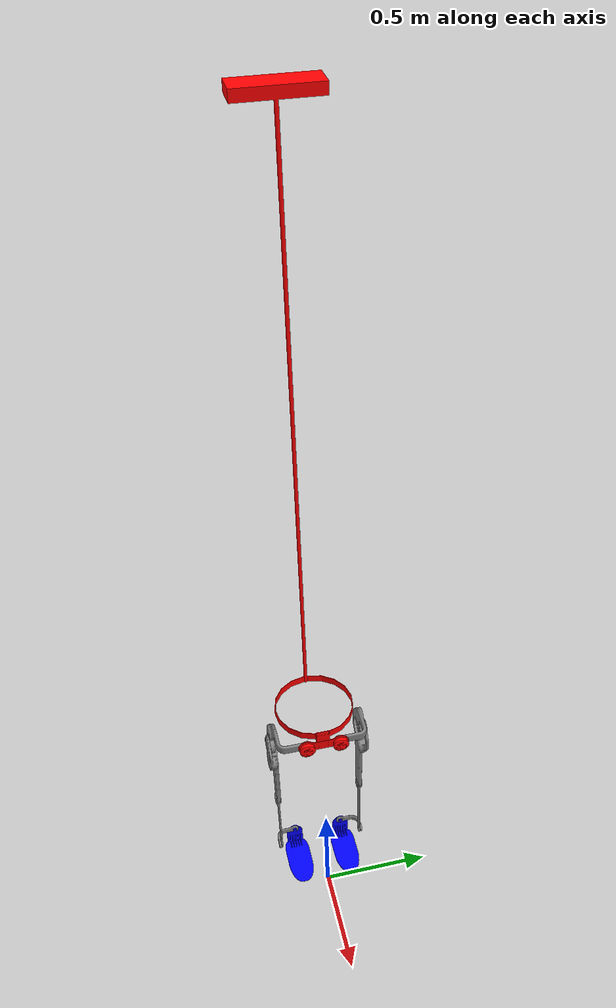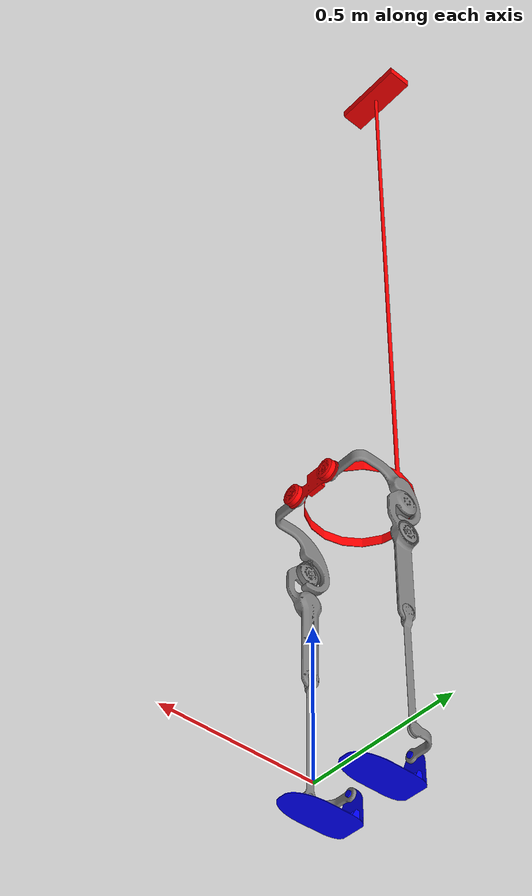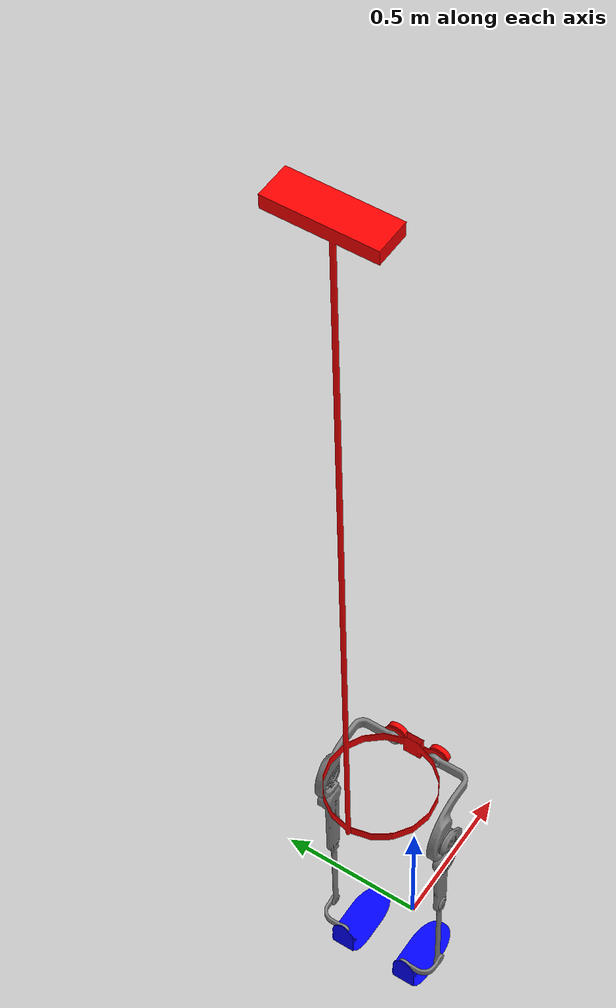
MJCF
<mujoco model="a2">

  <!-- ========== Compiler & Options ========== -->
  <compiler angle="radian" meshdir="../meshes" autolimits="true"/>

  <option timestep="0.005" gravity="0 0 -9.81">
  </option>

  <default>

    <joint damping="0.0" armature="0.00" limited="true"/>

    <default class="gemo_visual">  <!-- 只显示,不参与碰撞 -->
      <geom contype="0" conaffinity="0"/>
    </default>

    <default class="gemo_collision">  <!-- 只参与碰撞 -->
      <geom contype="0" conaffinity="1" group="3"/>
    </default>

    <default class="gemo_collision_box">
      <geom contype="1" conaffinity="1" group="4"/>
    </default>

  </default>

  <!-- ========== Assets (STL Meshes) ========== -->
  <asset>
    <mesh name="mesh_base"            file="base_link.STL"/>
    <mesh name="mesh_l_hip_roll"      file="left_hip_roll_link.STL"/>
    <mesh name="mesh_l_hip_yaw"       file="left_hip_yaw_link.STL"/>
    <mesh name="mesh_l_hip_pitch"     file="left_hip_pitch_link.STL"/>
    <mesh name="mesh_l_knee"          file="left_knee_link.STL"/>
    <mesh name="mesh_l_ankle_pitch"   file="left_ankle_pitch_link.STL"/>
    <mesh name="mesh_l_ankle_roll"    file="left_ankle_roll_link.STL"/>
    <mesh name="mesh_r_hip_roll"      file="right_hip_roll_link.STL"/>
    <mesh name="mesh_r_hip_yaw"       file="right_hip_yaw_link.STL"/>
    <mesh name="mesh_r_hip_pitch"     file="right_hip_pitch_link.STL"/>
    <mesh name="mesh_r_knee"          file="right_knee_link.STL"/>
    <mesh name="mesh_r_ankle_pitch"   file="right_ankle_pitch_link.STL"/>
    <mesh name="mesh_r_ankle_roll"    file="right_ankle_roll_link.STL"/>
  </asset>

  <asset>
      <texture name='texture_plane' type='2d' builtin='checker' rgb1='0.2745 0.5098 0.7059' rgb2='0.5294 0.8078 0.9804' width='128' height='128'/>
      <material name='material_plane' reflectance='0.0' texture='texture_plane' texrepeat='1 1' texuniform='true'/>
      <material name="gray" rgba="0.3 0.3 0.3 1"/>
      <material name="blue" rgba="0 0 1 1"/>
      <material name="red" rgba="1 0 0 1"/>
      <material name="green" rgba="0 1 0 1"/>
  </asset>

  <!-- ========== Worldbody ========== -->
  <worldbody>

    <body name= "box" pos="0 0 0" euler="0 0 0">
      <geom class="gemo_collision_box" type="box" size="0.2 0.2 0.1" pos="1.5 0.6 0.1"/>
    </body>

    <geom name="floor" type="plane" conaffinity="2" group="4" size="100 100 .2" material="material_plane"/>
       <light directional="true" ambient=".3 .3 .3" pos="30 30 30" dir="0 -.5 -1"
                    diffuse=".5 .5 .5" specular=".5 .5 .5" />

    <body name="base_link" pos="0 0 1.05" euler="0 0 0">
      <freejoint name="base_free"/>
      <inertial pos="-0.14464 0 0.63562" mass="1.6082" fullinertia="1.6349 1.6777 0.06302 0 0.2309 0"/>
      <geom class="gemo_visual" type="mesh" mesh="mesh_base" rgba="1 0 0 1"/>
      <geom class="gemo_collision" type="box" size="0.2 0.15 0.75" pos="-0.2 0 0.75"/>

      <body name="left_hip_roll_link" pos="-0.001 0.075 0" euler="0 0 0">
        <inertial pos="-0.11964 0.10244 -0.05598" mass="0.34283" fullinertia="0.00223 0.00379 0.00287 0.00091 -0.00132 0.00049"/>
        <joint name="left_hip_roll_joint" axis="1 0 0" range="-0.52 2.97"/>
        <geom class="gemo_visual" type="mesh" mesh="mesh_l_hip_roll"/>

        <body name="left_hip_yaw_link" pos="-0.166 0.128 -0.0835" euler="0 0 0">
          <inertial pos="-1E-05 0.00843 -0.04551" mass="0.46018"
                    fullinertia="0.00023 0.00035 0.00016 0 0 0"/>
          <joint name="left_hip_yaw_joint" axis="0 0 1" range="-2.76 2.76"/>
          <geom class="gemo_visual" type="mesh" mesh="mesh_l_hip_yaw"/>

          <body name="left_hip_pitch_link" pos="0 0.028 -0.0455" euler="0 0 0">
            <inertial pos="0.00472 -0.01824 -0.17562" mass="0.81624"
                      fullinertia="0.01192 0.01225 0.00052 -4E-05 -0.00047 -0.00068"/>
            <joint name="left_hip_pitch_joint" axis="0 1 0" range="-2.53 2.88"/>
            <geom class="gemo_visual" type="mesh" mesh="mesh_l_hip_pitch"/>

            <body name="left_knee_link" pos="0 -0.04325 -0.4" euler="0 0 0">
              <inertial pos="0 0.01314 -0.14741" mass="0.10574"
                        fullinertia="0.0018 0.0018 1E-05 0 0 -1E-05"/>
              <joint name="left_knee_joint" axis="0 1 0" range="-0.09 2.88"/>
              <geom class="gemo_visual" type="mesh" mesh="mesh_l_knee"/>

              <body name="left_ankle_pitch_link" pos="0 0.00825 -0.392" euler="0 0 0">
                <inertial pos="-0.04625 -0.01898 0" mass="0.04908"
                          fullinertia="7E-05 5E-05 0.00011 -4E-05 0 0"/>
                <joint name="left_ankle_pitch_joint" axis="0 1 0" range="-0.87 0.52"/>
                <geom class="gemo_visual" type="mesh" mesh="mesh_l_ankle_pitch"/>

                <body name="left_ankle_roll_link" pos="-0.063229 -0.0765 0" euler="0 0 0">
                  <inertial pos="0.04783 0 -0.08669" mass="0.21284"
                            fullinertia="0.00043 0.00147 0.00134 0 0.00031 0"/>
                  <joint name="left_ankle_roll_joint" axis="1 0 0" range="-0.26 0.26"/>
                  <geom class="gemo_visual" type="mesh" mesh="mesh_l_ankle_roll" rgba="0 0 1 1"/>

                  <body name="leg_lfoot_link" pos="0.11 0.0 -0.125" euler="0 0 1.5708">
                    <inertial pos="0 0 0" mass="0.0001"
                              fullinertia="0.000001 0.000001 0.000001 0 0 0"/>
                    <geom class="gemo_collision" type="box" size="0.06 0.1275 0.001" pos="0 0 0.0125" rgba="0 1 0 1"/>
                  </body>
                </body>
              </body>
            </body>
          </body>
        </body>
      </body>

      <body name="right_hip_roll_link" pos="-0.001 -0.075 0" euler="0 0 0">
        <inertial pos="-0.11964 -0.10243 -0.05598" mass="0.34281" fullinertia="0.00223 0.00379 0.00287 -0.00091 -0.00132 -0.00049"/>
        <joint name="right_hip_roll_joint" axis="1 0 0" range="-2.97 0.52"/>
        <geom class="gemo_visual" type="mesh" mesh="mesh_r_hip_roll"/>

        <body name="right_hip_yaw_link" pos="-0.166 -0.128 -0.0835" euler="0 0 0">
          <inertial pos="-1E-05 -0.00843 -0.04551" mass="0.46018"
                    fullinertia="0.00023 0.00035 0.00016 0 0 0"/>
          <joint name="right_hip_yaw_joint" axis="0 0 1" range="-2.76 2.76"/>
          <geom class="gemo_visual" type="mesh" mesh="mesh_r_hip_yaw"/>

          <body name="right_hip_pitch_link" pos="0 -0.028 -0.0455" euler="0 0 0">
            <inertial pos="0.00472 0.01824 -0.17562" mass="0.81624"
                      fullinertia="0.01192 0.01225 0.00052 4E-05 -0.00047 0.00068"/>
            <joint name="right_hip_pitch_joint" axis="0 1 0" range="-2.53 2.88"/>
            <geom class="gemo_visual" type="mesh" mesh="mesh_r_hip_pitch"/>

            <body name="right_knee_link" pos="0 0.04325 -0.4" euler="0 0 0">
              <inertial pos="0 -0.01314 -0.14741" mass="0.10574"
                        fullinertia="0.0018 0.0018 1E-05 0 0 1E-05"/>
              <joint name="right_knee_joint" axis="0 1 0" range="-0.09 2.88"/>
              <geom class="gemo_visual" type="mesh" mesh="mesh_r_knee"/>

              <body name="right_ankle_pitch_link" pos="0 -0.00825 -0.392" euler="0 0 0">
                <inertial pos="-0.04625 0.01898 0" mass="0.04908"
                          fullinertia="7E-05 5E-05 0.00011 4E-05 0 0"/>
                <joint name="right_ankle_pitch_joint" axis="0 1 0" range="-0.87 0.52"/>
                <geom class="gemo_visual" type="mesh" mesh="mesh_r_ankle_pitch"/>

                <body name="right_ankle_roll_link" pos="-0.063229 0.0765 0" euler="0 0 0">
                  <inertial pos="0.04784 0 -0.08669" mass="0.21281"
                            fullinertia="0.00043 0.00147 0.00134 0 0.00031 0"/>
                  <joint name="right_ankle_roll_joint" axis="1 0 0" range="-0.26 0.26"/>
                  <geom class="gemo_visual" type="mesh" mesh="mesh_r_ankle_roll" rgba="0 0 1 1"/>

                  <body name="leg_rfoot_link" pos="0.11 0.0 -0.125" euler="0 0 1.5708">
                    <inertial pos="0 0 0" mass="0.0001"
                              fullinertia="0.000001 0.000001 0.000001 0 0 0"/>
                    <geom class="gemo_collision" type="box" size="0.06 0.1275 0.001" pos="0 0 0.0125" rgba="0 1 0 1"/>
                  </body>
                </body>
              </body>
            </body>
          </body>
        </body>
      </body>

    </body><!-- /base_link -->
  </worldbody>

  <actuator>

    <!-- Left Leg Actuators -->
    <position name="act_left_hip_roll_joint"    joint="left_hip_roll_joint"
              ctrlrange="-0.52 2.97"  kp="50.0" kv="0.3" forcerange="-200.0 200.0"/>
    <position name="act_left_hip_yaw_joint"     joint="left_hip_yaw_joint"
              ctrlrange="-2.76 2.76"  kp="50.0" kv="0.3" forcerange="-200.0 200.0"/>
    <position name="act_left_hip_pitch_joint"   joint="left_hip_pitch_joint"
              ctrlrange="-2.53 2.88"  kp="50.0" kv="0.3" forcerange="-200.0 200.0"/>
    <position name="act_left_knee_joint"        joint="left_knee_joint"
              ctrlrange="-0.09 2.88"  kp="50.0" kv="0.3" forcerange="-200.0 200.0"/>
    <position name="act_left_ankle_pitch_joint" joint="left_ankle_pitch_joint"
              ctrlrange="-0.87 0.52"  kp="50.0" kv="0.3" forcerange="-200.0 200.0"/>
    <position name="act_left_ankle_roll_joint"  joint="left_ankle_roll_joint"
              ctrlrange="-0.26 0.26"  kp="50.0" kv="0.3" forcerange="-200.0 200.0"/>

    <!-- Right Leg Actuators -->
    <position name="act_right_hip_roll_joint"    joint="right_hip_roll_joint"
              ctrlrange="-2.97 0.52"  kp="50.0" kv="0.3" forcerange="-200.0 200.0"/>
    <position name="act_right_hip_yaw_joint"     joint="right_hip_yaw_joint"
              ctrlrange="-2.76 2.76"  kp="50.0" kv="0.3" forcerange="-200.0 200.0"/>
    <position name="act_right_hip_pitch_joint"   joint="right_hip_pitch_joint"
              ctrlrange="-2.53 2.88"  kp="50.0" kv="0.3" forcerange="-200.0 200.0"/>
    <position name="act_right_knee_joint"        joint="right_knee_joint"
              ctrlrange="-0.09 2.88"  kp="50.0" kv="0.3" forcerange="-200.0 200.0"/>
    <position name="act_right_ankle_pitch_joint" joint="right_ankle_pitch_joint"
              ctrlrange="-0.87 0.52"  kp="50.0" kv="0.3" forcerange="-200.0 200.0"/>
    <position name="act_right_ankle_roll_joint"  joint="right_ankle_roll_joint"
              ctrlrange="-0.26 0.26"  kp="50.0" kv="0.3" forcerange="-200.0 200.0"/>
  </actuator>

  <sensor>
    <actuatorfrc name="sen_left_hip_roll_joint_trq"    actuator="act_left_hip_roll_joint"/>
    <actuatorfrc name="sen_left_hip_yaw_joint_trq"     actuator="act_left_hip_yaw_joint"/>
    <actuatorfrc name="sen_left_hip_pitch_joint_trq"   actuator="act_left_hip_pitch_joint"/>
    <actuatorfrc name="sen_left_knee_joint_trq"        actuator="act_left_knee_joint"/>
    <actuatorfrc name="sen_left_ankle_pitch_joint_trq" actuator="act_left_ankle_pitch_joint"/>
    <actuatorfrc name="sen_left_ankle_roll_joint_trq"  actuator="act_left_ankle_roll_joint"/>

    <actuatorfrc name="sen_right_hip_roll_joint_trq"    actuator="act_right_hip_roll_joint"/>
    <actuatorfrc name="sen_right_hip_yaw_joint_trq"     actuator="act_right_hip_yaw_joint"/>
    <actuatorfrc name="sen_right_hip_pitch_joint_trq"   actuator="act_right_hip_pitch_joint"/>
    <actuatorfrc name="sen_right_knee_joint_trq"        actuator="act_right_knee_joint"/>
    <actuatorfrc name="sen_right_ankle_pitch_joint_trq" actuator="act_right_ankle_pitch_joint"/>
    <actuatorfrc name="sen_right_ankle_roll_joint_trq"  actuator="act_right_ankle_roll_joint"/>

  </sensor>
</mujoco>
